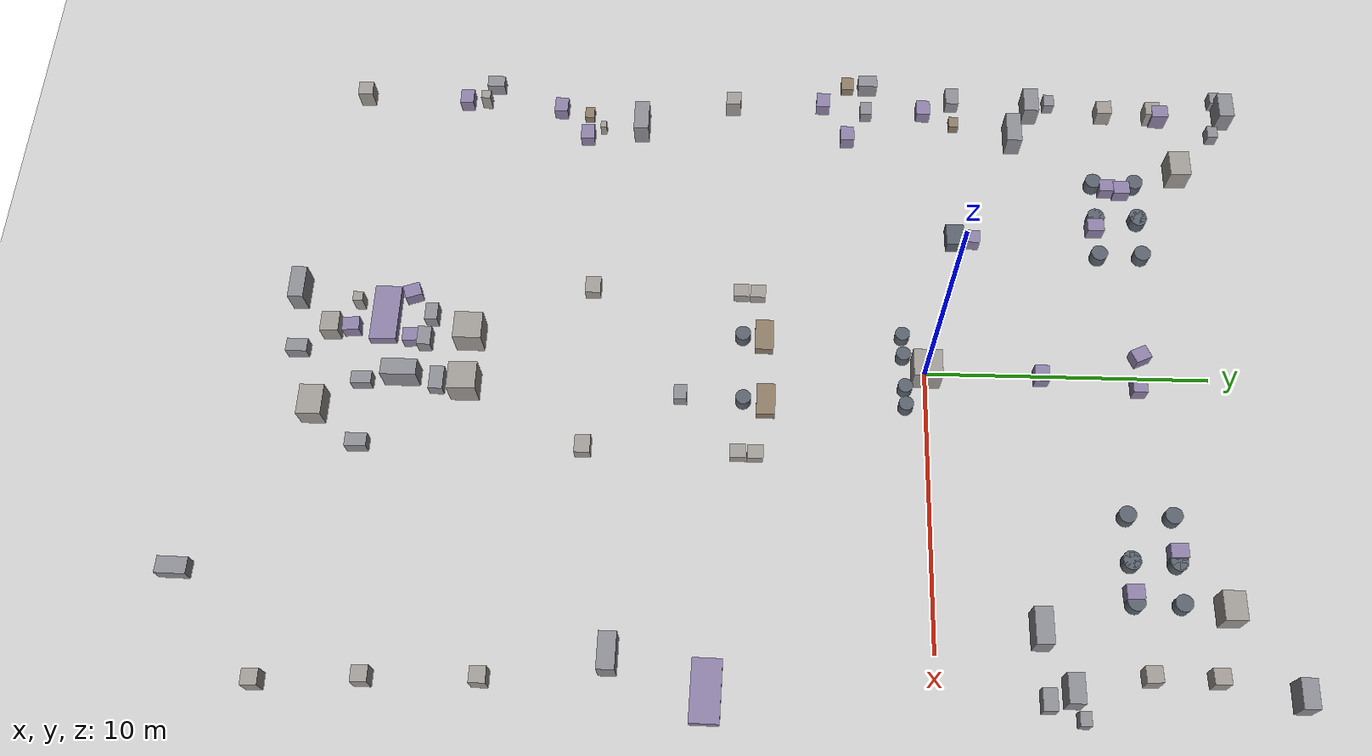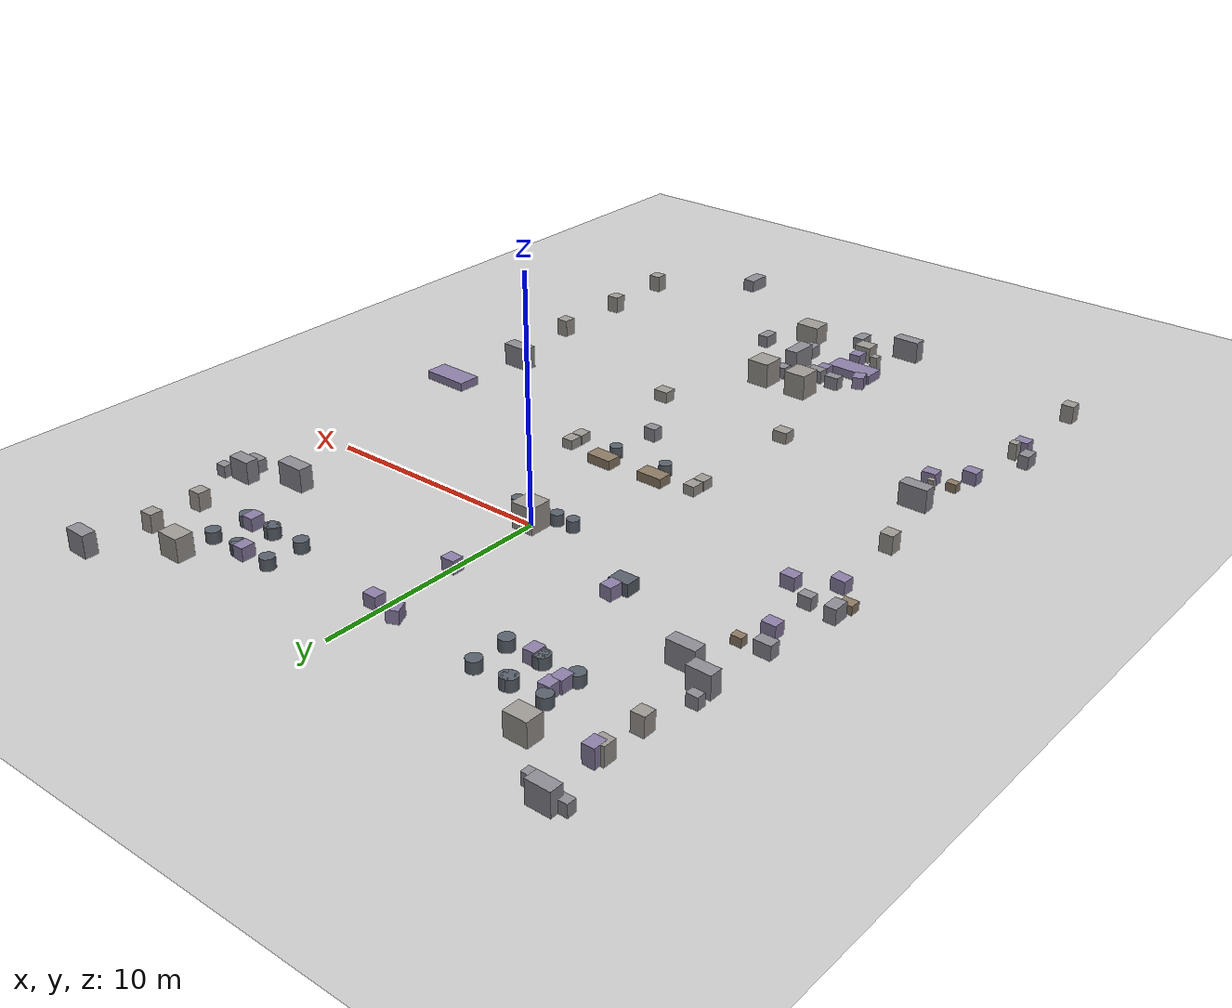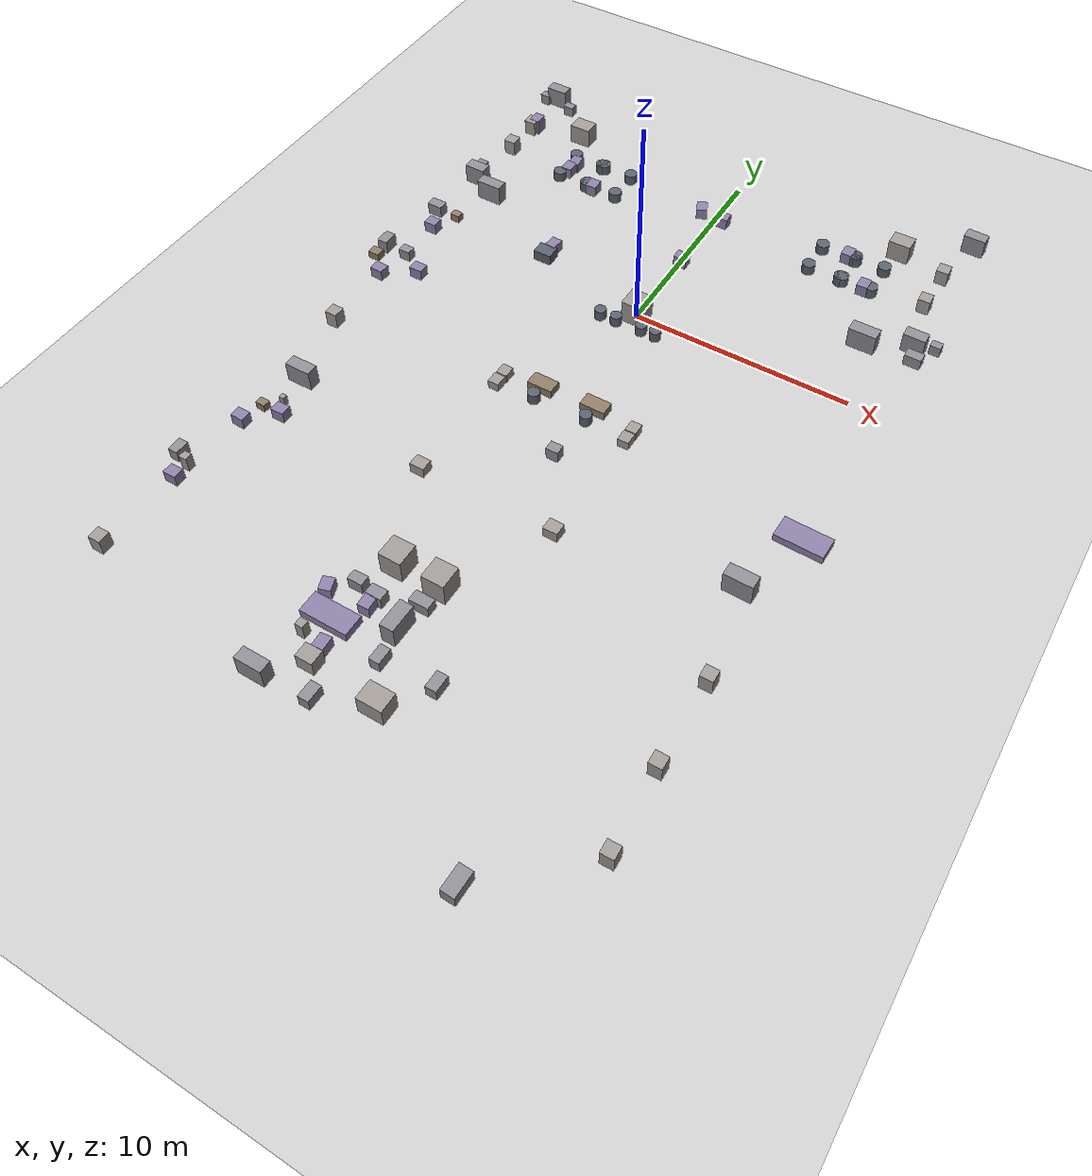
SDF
<sdf version="1.6">
 <world name="hospital">
  <plugin filename="gz-sim-physics-system" name="gz::sim::systems::Physics"/>
  <plugin filename="gz-sim-user-commands-system" name="gz::sim::systems::UserCommands"/>
  <plugin filename="gz-sim-scene-broadcaster-system" name="gz::sim::systems::SceneBroadcaster"/>
  <plugin filename="gz-sim-sensors-system" name="gz::sim::systems::Sensors">
   <render_engine>ogre2</render_engine>
  </plugin>
  <plugin filename="gz-sim-imu-system" name="gz::sim::systems::Imu"/>
  <gravity>0 0 -9.8</gravity>
  <physics default="0" name="default_physics" type="ode">
   <max_step_size>0.001</max_step_size>
   <real_time_factor>1</real_time_factor>
   <real_time_update_rate>1000</real_time_update_rate>
  </physics>
  <scene><ambient>0.6 0.6 0.6 1</ambient><background>0.4 0.4 0.4 1</background><shadows>false</shadows></scene>
  <include><uri>https://fuel.gazebosim.org/1.0/OpenRobotics/models/Ground Plane</uri></include>
  <include><uri>https://fuel.gazebosim.org/1.0/OpenRobotics/models/Sun</uri></include>
  <model name="CGMClassic_1">
   <include>
    <uri>https://fuel.gazebosim.org/1.0/OpenRobotics/models/CGMClassic</uri>
    <static>true</static>
    <pose>11.1777 -18.4129 0 0 0 -3.13719</pose>
   </include>
  </model>
  <model name="CGMClassic_2">
   <include>
    <uri>https://fuel.gazebosim.org/1.0/OpenRobotics/models/CGMClassic</uri>
    <static>true</static>
    <pose>11.1179 -14.6493 0 0 0 -3.13599</pose>
   </include>
  </model>
  <model name="Chair_1">
   <include>
    <uri>https://fuel.gazebosim.org/1.0/OpenRobotics/models/Chair</uri>
    <static>true</static>
    <pose>-0.603067 -0.77859 -1e-05 0 0 -1.54998</pose>
   </include>
  </model>
  <model name="Chair_2">
   <include>
    <uri>https://fuel.gazebosim.org/1.0/OpenRobotics/models/Chair</uri>
    <static>true</static>
    <pose>0.626494 -0.743667 -0 0 1e-06 -1.53446</pose>
   </include>
  </model>
  <model name="Scrubs_1">
   <include>
    <uri>https://fuel.gazebosim.org/1.0/OpenRobotics/models/Scrubs</uri>
    <static>true</static>
    <pose>-9.61916 -12.5112 0 0 0 -3.12353</pose>
   </include>
  </model>
  <model name="Scrubs_2">
   <include>
    <uri>https://fuel.gazebosim.org/1.0/OpenRobotics/models/Scrubs</uri>
    <static>true</static>
    <pose>0.054597 4.05849 0 0 -0 3.12413</pose>
   </include>
  </model>
  <model name="PatientWheelChair_1">
   <include>
    <uri>https://fuel.gazebosim.org/1.0/OpenRobotics/models/PatientWheelChair</uri>
    <static>true</static>
    <pose>-5.46091 1.23577 0 0 0 -1.54828</pose>
   </include>
  </model>
  <model name="Scrubs_3">
   <include>
    <uri>https://fuel.gazebosim.org/1.0/OpenRobotics/models/Scrubs</uri>
    <static>true</static>
    <pose>-5.38513 1.82526 0 0 0 -1.63757</pose>
   </include>
  </model>
  <model name="SurgicalTrolley_1">
   <include>
    <uri>https://fuel.gazebosim.org/1.0/OpenRobotics/models/SurgicalTrolley</uri>
    <static>true</static>
    <pose>11.4301 3.56328 0 0 -0 0</pose>
   </include>
  </model>
  <model name="CGMClassic_3">
   <include>
    <uri>https://fuel.gazebosim.org/1.0/OpenRobotics/models/CGMClassic</uri>
    <static>true</static>
    <pose>-11.2304 -21.1134 0 0 0 -3.11834</pose>
   </include>
  </model>
  <model name="PotatoChipChair_1">
   <include>
    <uri>https://fuel.gazebosim.org/1.0/OpenRobotics/models/PotatoChipChair</uri>
    <static>true</static>
    <pose>-7.9025 6.49258 0 0 -0 0</pose>
   </include>
  </model>
  <model name="PotatoChipChair_2">
   <include>
    <uri>https://fuel.gazebosim.org/1.0/OpenRobotics/models/PotatoChipChair</uri>
    <static>true</static>
    <pose>-7.89464 8.01997 0 0 -0 0</pose>
   </include>
  </model>
  <model name="PotatoChipChair_3">
   <include>
    <uri>https://fuel.gazebosim.org/1.0/OpenRobotics/models/PotatoChipChair</uri>
    <static>true</static>
    <pose>-6.39087 6.45458 0 0 0 -3.13096</pose>
   </include>
  </model>
  <model name="PotatoChipChair_4">
   <include>
    <uri>https://fuel.gazebosim.org/1.0/OpenRobotics/models/PotatoChipChair</uri>
    <static>true</static>
    <pose>-6.41405 8.00716 0 0 0 -3.13096</pose>
   </include>
  </model>
  <model name="PotatoChipChair_5">
   <include>
    <uri>https://fuel.gazebosim.org/1.0/OpenRobotics/models/PotatoChipChair</uri>
    <static>true</static>
    <pose>-6.32415 6.47504 0 0 -0 0</pose>
   </include>
  </model>
  <model name="PotatoChipChair_6">
   <include>
    <uri>https://fuel.gazebosim.org/1.0/OpenRobotics/models/PotatoChipChair</uri>
    <static>true</static>
    <pose>-6.32415 8.03277 0 0 -0 0</pose>
   </include>
  </model>
  <model name="PotatoChipChair_7">
   <include>
    <uri>https://fuel.gazebosim.org/1.0/OpenRobotics/models/PotatoChipChair</uri>
    <static>true</static>
    <pose>-4.83084 6.47504 0 0 0 -3.13096</pose>
   </include>
  </model>
  <model name="PotatoChipChair_8">
   <include>
    <uri>https://fuel.gazebosim.org/1.0/OpenRobotics/models/PotatoChipChair</uri>
    <static>true</static>
    <pose>-4.85665 8.03277 0 0 0 -3.13096</pose>
   </include>
  </model>
  <model name="VisitorKidSit_1">
   <include>
    <uri>https://fuel.gazebosim.org/1.0/OpenRobotics/models/VisitorKidSit</uri>
    <static>true</static>
    <pose>-7.69163 6.9857 0 0 -0 1.56778</pose>
   </include>
  </model>
  <model name="FemaleVisitorSit_1">
   <include>
    <uri>https://fuel.gazebosim.org/1.0/OpenRobotics/models/FemaleVisitorSit</uri>
    <static>true</static>
    <pose>-7.61435 7.50057 0 0 -0 1.60052</pose>
   </include>
  </model>
  <model name="AdjTable_1">
   <include>
    <uri>https://fuel.gazebosim.org/1.0/OpenRobotics/models/AdjTable</uri>
    <static>true</static>
    <pose>1.2174 -5.60888 0 0 0 -0.008733</pose>
   </include>
  </model>
  <model name="PotatoChipChair_9">
   <include>
    <uri>https://fuel.gazebosim.org/1.0/OpenRobotics/models/PotatoChipChair</uri>
    <static>true</static>
    <pose>8.18933 6.61196 0 0 -0 3.13621</pose>
   </include>
  </model>
  <model name="PotatoChipChair_10">
   <include>
    <uri>https://fuel.gazebosim.org/1.0/OpenRobotics/models/PotatoChipChair</uri>
    <static>true</static>
    <pose>8.18939 8.16786 0 0 -0 3.13621</pose>
   </include>
  </model>
  <model name="PotatoChipChair_11">
   <include>
    <uri>https://fuel.gazebosim.org/1.0/OpenRobotics/models/PotatoChipChair</uri>
    <static>true</static>
    <pose>6.80281 6.60106 0 0 -0 0</pose>
   </include>
  </model>
  <model name="PotatoChipChair_12">
   <include>
    <uri>https://fuel.gazebosim.org/1.0/OpenRobotics/models/PotatoChipChair</uri>
    <static>true</static>
    <pose>6.80281 8.1542 0 0 -0 0</pose>
   </include>
  </model>
  <model name="PotatoChipChair_13">
   <include>
    <uri>https://fuel.gazebosim.org/1.0/OpenRobotics/models/PotatoChipChair</uri>
    <static>true</static>
    <pose>6.73748 6.5915 0 0 -0 3.13621</pose>
   </include>
  </model>
  <model name="PotatoChipChair_14">
   <include>
    <uri>https://fuel.gazebosim.org/1.0/OpenRobotics/models/PotatoChipChair</uri>
    <static>true</static>
    <pose>6.7505 8.15453 0 0 -0 3.13621</pose>
   </include>
  </model>
  <model name="PotatoChipChair_15">
   <include>
    <uri>https://fuel.gazebosim.org/1.0/OpenRobotics/models/PotatoChipChair</uri>
    <static>true</static>
    <pose>5.17897 6.59309 0 0 -0 0</pose>
   </include>
  </model>
  <model name="PotatoChipChair_16">
   <include>
    <uri>https://fuel.gazebosim.org/1.0/OpenRobotics/models/PotatoChipChair</uri>
    <static>true</static>
    <pose>5.1811 8.14489 0 0 -0 0</pose>
   </include>
  </model>
  <model name="MopCart3_1">
   <include>
    <uri>https://fuel.gazebosim.org/1.0/OpenRobotics/models/MopCart3</uri>
    <static>true</static>
    <pose>1.07736 -8.59036 -6.7e-05 0 1e-06 0</pose>
   </include>
  </model>
  <model name="MaleVisitorSit_1">
   <include>
    <uri>https://fuel.gazebosim.org/1.0/OpenRobotics/models/MaleVisitorSit</uri>
    <static>true</static>
    <pose>6.41259 8.18749 0 0.000578 -0 -1.56624</pose>
   </include>
  </model>
  <model name="Drawer_1">
   <include>
    <uri>https://fuel.gazebosim.org/1.0/OpenRobotics/models/Drawer</uri>
    <static>true</static>
    <pose>3.18472 -6.54185 0 0 0 -1.55907</pose>
   </include>
  </model>
  <model name="Drawer_2">
   <include>
    <uri>https://fuel.gazebosim.org/1.0/OpenRobotics/models/Drawer</uri>
    <static>true</static>
    <pose>3.19085 -5.94838 0 0 0 -1.55907</pose>
   </include>
  </model>
  <model name="OfficeChairBlack_1">
   <include>
    <uri>https://fuel.gazebosim.org/1.0/OpenRobotics/models/OfficeChairBlack</uri>
    <static>true</static>
    <pose>1.20234 -6.39435 0 0 -0 3.13125</pose>
   </include>
  </model>
  <model name="OfficeChairBlack_2">
   <include>
    <uri>https://fuel.gazebosim.org/1.0/OpenRobotics/models/OfficeChairBlack</uri>
    <static>true</static>
    <pose>-1.25321 -6.4505 0 0 -0 3.13125</pose>
   </include>
  </model>
  <model name="AdjTable_2">
   <include>
    <uri>https://fuel.gazebosim.org/1.0/OpenRobotics/models/AdjTable</uri>
    <static>true</static>
    <pose>-1.26728 -5.69226 0 0 0 -0.008733</pose>
   </include>
  </model>
  <model name="Drawer_3">
   <include>
    <uri>https://fuel.gazebosim.org/1.0/OpenRobotics/models/Drawer</uri>
    <static>true</static>
    <pose>-3.02001 -6.54343 0 0 -0 1.56555</pose>
   </include>
  </model>
  <model name="Drawer_4">
   <include>
    <uri>https://fuel.gazebosim.org/1.0/OpenRobotics/models/Drawer</uri>
    <static>true</static>
    <pose>-2.99762 -5.94782 0 0 -0 1.56555</pose>
   </include>
  </model>
  <model name="ElderLadyPatient_1">
   <include>
    <uri>https://fuel.gazebosim.org/1.0/OpenRobotics/models/ElderLadyPatient</uri>
    <static>true</static>
    <pose>-10.9972 0.231354 0.001654 0 -0 0</pose>
   </include>
  </model>
  <model name="ElderLadyPatient_2">
   <include>
    <uri>https://fuel.gazebosim.org/1.0/OpenRobotics/models/ElderLadyPatient</uri>
    <static>true</static>
    <pose>-10.8133 -13.5925 0.001657 0 -2e-06 -0.025052</pose>
   </include>
  </model>
  <model name="CGMClassic_4">
   <include>
    <uri>https://fuel.gazebosim.org/1.0/OpenRobotics/models/CGMClassic</uri>
    <static>true</static>
    <pose>-11.0878 -7.00992 0 0 -0 3.1351</pose>
   </include>
  </model>
  <model name="InstrumentCart1_1">
   <include><uri>https://fuel.gazebosim.org/1.0/OpenRobotics/models/Shower</uri></include>
   <include>
    <uri>https://fuel.gazebosim.org/1.0/OpenRobotics/models/InstrumentCart1</uri>
    <static>true</static>
    <pose>-11.8071 -16.1825 0 0 -0 1.56702</pose>
   </include>
  </model>
  <model name="ElderMalePatient_1">
   <include>
    <uri>https://fuel.gazebosim.org/1.0/OpenRobotics/models/ElderMalePatient</uri>
    <static>true</static>
    <pose>-11.1165 -17.2377 0.001656 0 3e-06 0</pose>
   </include>
  </model>
  <model name="InstrumentCart2_1">
   <include>
    <uri>https://fuel.gazebosim.org/1.0/OpenRobotics/models/InstrumentCart2</uri>
    <static>true</static>
    <pose>-12.0906 -1.87329 0.051875 0 -0 1.57773</pose>
   </include>
  </model>
  <model name="InstrumentCart2_2">
   <include>
    <uri>https://fuel.gazebosim.org/1.0/OpenRobotics/models/InstrumentCart2</uri>
    <static>true</static>
    <pose>-11.5231 1.34237 0 0 -0 0</pose>
   </include>
  </model>
  <model name="MetalCabinet_1">
   <include>
    <uri>https://fuel.gazebosim.org/1.0/OpenRobotics/models/MetalCabinet</uri>
    <static>true</static>
    <pose>-11.1128 11.6546 0 0 -0 0</pose>
   </include>
  </model>
  <model name="MetalCabinet_2">
   <include>
    <uri>https://fuel.gazebosim.org/1.0/OpenRobotics/models/MetalCabinet</uri>
    <static>true</static>
    <pose>-11.1876 4.2888 0 0 -0 3.1387</pose>
   </include>
  </model>
  <model name="CGMClassic_5">
   <include>
    <uri>https://fuel.gazebosim.org/1.0/OpenRobotics/models/CGMClassic</uri>
    <static>true</static>
    <pose>-11.0106 8.9505 -0.008203 -0.035019 -0.000392 3.13388</pose>
   </include>
  </model>
  <model name="CGMClassic_6">
   <include>
    <uri>https://fuel.gazebosim.org/1.0/OpenRobotics/models/CGMClassic</uri>
    <static>true</static>
    <pose>-11.025 7.10335 0 -0.035021 1.8e-05 -3.13762</pose>
   </include>
  </model>
  <model name="BedTable_1">
   <include>
    <uri>https://fuel.gazebosim.org/1.0/OpenRobotics/models/BedTable</uri>
    <static>true</static>
    <pose>-10.4759 1.39442 0.001184 0 -3e-06 0</pose>
   </include>
  </model>
  <model name="BedTable_2">
   <include>
    <uri>https://fuel.gazebosim.org/1.0/OpenRobotics/models/BedTable</uri>
    <static>true</static>
    <pose>-10.5874 -12.5084 0.001189 0 -0 3.11588</pose>
   </include>
  </model>
  <model name="BedsideTable_1">
   <include>
    <uri>https://fuel.gazebosim.org/1.0/OpenRobotics/models/BedsideTable</uri>
    <static>true</static>
    <pose>-12.1499 -2.63111 0.00018 1e-06 -0 -0.00878</pose>
   </include>
  </model>
  <model name="AnesthesiaMachine_1">
   <include>
    <uri>https://fuel.gazebosim.org/1.0/OpenRobotics/models/AnesthesiaMachine</uri>
    <static>true</static>
    <pose>-1.28478 -21.1127 0 0 0 -3.12971</pose>
   </include>
  </model>
  <model name="TrolleyBedPatient_1">
   <include>
    <uri>https://fuel.gazebosim.org/1.0/OpenRobotics/models/TrolleyBedPatient</uri>
    <static>true</static>
    <pose>-1.83202 -19.2612 0 0 -0 0</pose>
   </include>
  </model>
  <model name="Scrubs_4">
   <include>
    <uri>https://fuel.gazebosim.org/1.0/OpenRobotics/models/Scrubs</uri>
    <static>true</static>
    <pose>-0.93616 -18.2252 0 0 -0 1.62572</pose>
   </include>
  </model>
  <model name="Shower_1">
   <include>
    <uri>https://fuel.gazebosim.org/1.0/OpenRobotics/models/Shower</uri>
    <static>true</static>
    <pose>-1.07422 -16.1332 0 0 -0 0</pose>
   </include>
  </model>
  <model name="Shower_2">
   <include>
    <uri>https://fuel.gazebosim.org/1.0/OpenRobotics/models/Shower</uri>
    <static>true</static>
    <pose>0.853327 -16.1492 0 0 -0 0</pose>
   </include>
  </model>
  <model name="SurgicalTrolley_2">
   <include>
    <uri>https://fuel.gazebosim.org/1.0/OpenRobotics/models/SurgicalTrolley</uri>
    <static>true</static>
    <pose>-0.411421 -22.2085 0 0 0 -1.58175</pose>
   </include>
  </model>
  <model name="SurgicalTrolley_3">
   <include>
    <uri>https://fuel.gazebosim.org/1.0/OpenRobotics/models/SurgicalTrolley</uri>
    <static>true</static>
    <pose>3.11747 -19.6565 0 0 -0 1.57031</pose>
   </include>
  </model>
  <model name="SurgicalTrolleyMed_1">
   <include>
    <uri>https://fuel.gazebosim.org/1.0/OpenRobotics/models/SurgicalTrolleyMed</uri>
    <static>true</static>
    <pose>0.770804 -19.7749 0 0 0 -1.56798</pose>
   </include>
  </model>
  <model name="Scrubs_5">
   <include>
    <uri>https://fuel.gazebosim.org/1.0/OpenRobotics/models/Scrubs</uri>
    <static>true</static>
    <pose>-2.66657 -18.3733 0 -0.002221 -0.006608 -1.24025</pose>
   </include>
  </model>
  <model name="InstrumentCart1_2">
   <include>
    <uri>https://fuel.gazebosim.org/1.0/OpenRobotics/models/InstrumentCart1</uri>
    <static>true</static>
    <pose>-11.8071 -16.1825 0 0 -0 1.56702</pose>
   </include>
  </model>
  <model name="InstrumentCart2_3">
   <include>
    <uri>https://fuel.gazebosim.org/1.0/OpenRobotics/models/InstrumentCart2</uri>
    <static>true</static>
    <pose>-0.869537 -17.7436 0 0 0 -0.002595</pose>
   </include>
  </model>
  <model name="StorageRackCovered_1">
   <include>
    <uri>https://fuel.gazebosim.org/1.0/OpenRobotics/models/StorageRackCovered</uri>
    <static>true</static>
    <pose>0.546476 -18.3985 -0 0 -0 1.56584</pose>
   </include>
  </model>
  <model name="StorageRack_2">
   <include>
    <uri>https://fuel.gazebosim.org/1.0/OpenRobotics/models/StorageRack</uri>
    <static>true</static>
    <pose>-2.69866 -22.4178 -8e-06 0 4e-06 0</pose>
   </include>
  </model>
  <model name="KitchenSink_1">
   <include>
    <uri>https://fuel.gazebosim.org/1.0/OpenRobotics/models/KitchenSink</uri>
    <static>true</static>
    <pose>3.06236 -11.8809 -0.001614 0 -0 3.1391</pose>
   </include>
  </model>
  <model name="KitchenSink_2">
   <include>
    <uri>https://fuel.gazebosim.org/1.0/OpenRobotics/models/KitchenSink</uri>
    <static>true</static>
    <pose>-3.09305 -11.8988 -0.001609 0 -0 0</pose>
   </include>
  </model>
  <model name="CGMClassic_7">
   <include>
    <uri>https://fuel.gazebosim.org/1.0/OpenRobotics/models/CGMClassic</uri>
    <static>true</static>
    <pose>10.6166 9.06291 -0.008203 -0.03501 0.000885 -3.11285</pose>
   </include>
  </model>
  <model name="CGMClassic_8">
   <include>
    <uri>https://fuel.gazebosim.org/1.0/OpenRobotics/models/CGMClassic</uri>
    <static>true</static>
    <pose>10.6006 6.90956 -0.008203 -0.035003 0.001133 -3.10576</pose>
   </include>
  </model>
  <model name="MetalCabinet_3">
   <include>
    <uri>https://fuel.gazebosim.org/1.0/OpenRobotics/models/MetalCabinet</uri>
    <static>true</static>
    <pose>11.1356 4.33826 0 0 -0 3.1387</pose>
   </include>
  </model>
  <model name="MetalCabinet_4">
   <include>
    <uri>https://fuel.gazebosim.org/1.0/OpenRobotics/models/MetalCabinet</uri>
    <static>true</static>
    <pose>11.1318 11.6838 0 0 0 -0.023701</pose>
   </include>
  </model>
  <model name="ParkingTrolleyMin_1">
   <include>
    <uri>https://fuel.gazebosim.org/1.0/OpenRobotics/models/ParkingTrolleyMin</uri>
    <static>true</static>
    <pose>0.715846 -17.1496 -0.000121 -1e-06 -0 0</pose>
   </include>
  </model>
  <model name="PatientFSit_1">
   <include>
    <uri>https://fuel.gazebosim.org/1.0/OpenRobotics/models/PatientFSit</uri>
    <static>true</static>
    <pose>-10.8902 9.18683 0.228965 0 -0 1.58161</pose>
   </include>
  </model>
  <model name="MaleVisitorOnPhone_1">
   <include>
    <uri>https://fuel.gazebosim.org/1.0/OpenRobotics/models/MaleVisitorOnPhone</uri>
    <static>true</static>
    <pose>-0.760316 7.58474 0 0 0 -1.14974</pose>
   </include>
  </model>
  <model name="FemaleVisitor_1">
   <include>
    <uri>https://fuel.gazebosim.org/1.0/OpenRobotics/models/FemaleVisitor</uri>
    <static>true</static>
    <pose>0.416835 7.44353 0 0 -0 0</pose>
   </include>
  </model>
  <model name="MaleVisitorSit_2">
   <include>
    <uri>https://fuel.gazebosim.org/1.0/OpenRobotics/models/MaleVisitorSit</uri>
    <static>true</static>
    <pose>-5.98588 6.41261 0 0 -0 1.58808</pose>
   </include>
  </model>
  <model name="Scrubs_6">
   <include>
    <uri>https://fuel.gazebosim.org/1.0/OpenRobotics/models/Scrubs</uri>
    <static>true</static>
    <pose>-1.29468 -20.4093 0 0 0 -1.51066</pose>
   </include>
  </model>
  <model name="MalePatientBed_1">
   <include>
    <uri>https://fuel.gazebosim.org/1.0/OpenRobotics/models/MalePatientBed</uri>
    <static>true</static>
    <pose>11.3771 -7.38891 0.001658 -1e-06 1e-06 3.11598</pose>
   </include>
  </model>
  <model name="CGMClassic_9">
   <include>
    <uri>https://fuel.gazebosim.org/1.0/OpenRobotics/models/CGMClassic</uri>
    <static>true</static>
    <pose>11.3613 -21.8867 0 0 0 -3.12292</pose>
   </include>
  </model>
  <model name="StorageRackCoverOpen_1">
   <include>
    <uri>https://fuel.gazebosim.org/1.0/OpenRobotics/models/StorageRackCoverOpen</uri>
    <static>true</static>
    <pose>9.15016 3.44263 -9e-06 1e-06 2e-06 0</pose>
   </include>
  </model>
  <model name="StorageRack_3">
   <include>
    <uri>https://fuel.gazebosim.org/1.0/OpenRobotics/models/StorageRack</uri>
    <static>true</static>
    <pose>-10.1178 -10.4694 -0 0 -0 0</pose>
   </include>
  </model>
  <model name="StorageRack_4">
   <include>
    <uri>https://fuel.gazebosim.org/1.0/OpenRobotics/models/StorageRack</uri>
    <static>true</static>
    <pose>-9.91557 3.5644 -9e-06 1e-06 1e-06 -0.000273</pose>
   </include>
  </model>
  <model name="StorageRackCovered_2">
   <include>
    <uri>https://fuel.gazebosim.org/1.0/OpenRobotics/models/StorageRackCovered</uri>
    <static>true</static>
    <pose>10.294 -10.577 -7e-06 3e-06 -0 3.13389</pose>
   </include>
  </model>
  <model name="FemaleVisitorSit_2">
   <include>
    <uri>https://fuel.gazebosim.org/1.0/OpenRobotics/models/FemaleVisitorSit</uri>
    <static>true</static>
    <pose>7.85005 6.59766 0 0 0 -1.5621</pose>
   </include>
  </model>
  <model name="InstrumentCart1_3">
   <include>
    <uri>https://fuel.gazebosim.org/1.0/OpenRobotics/models/InstrumentCart1</uri>
    <static>true</static>
    <pose>-1.83539 -17.5879 0 0 -0 0</pose>
   </include>
  </model>
  <model name="ParkingTrolleyMax_1">
   <include>
    <uri>https://fuel.gazebosim.org/1.0/OpenRobotics/models/ParkingTrolleyMax</uri>
    <static>true</static>
    <pose>7.71054 -25.1326 -0.000121 1e-06 -0 -1.59536</pose>
   </include>
  </model>
  <model name="ElderMalePatient_2">
   <include>
    <uri>https://fuel.gazebosim.org/1.0/OpenRobotics/models/ElderMalePatient</uri>
    <static>true</static>
    <pose>-11.2471 -3.5813 0.001656 0 -0 -0.054192</pose>
   </include>
  </model>
  <model name="Chair_3">
   <include>
    <uri>https://fuel.gazebosim.org/1.0/OpenRobotics/models/Chair</uri>
    <static>true</static>
    <pose>-1.37633 -0.795802 0 -1e-06 0 -1.54998</pose>
   </include>
  </model>
  <model name="XRayMachine_1">
   <include>
    <uri>https://fuel.gazebosim.org/1.0/OpenRobotics/models/XRayMachine</uri>
    <static>true</static>
    <pose>1.79424 -21.3329 0 0 -0 0</pose>
   </include>
  </model>
  <model name="IVStand_1">
   <include>
    <uri>https://fuel.gazebosim.org/1.0/OpenRobotics/models/IVStand</uri>
    <static>true</static>
    <pose>-11.0966 -16.4963 0 0 -0 0</pose>
   </include>
  </model>
  <model name="BloodPressureMonitor_1">
   <include>
    <uri>https://fuel.gazebosim.org/1.0/OpenRobotics/models/BloodPressureMonitor</uri>
    <static>true</static>
    <pose>-9.96258 -11.9361 0 0 -0 0</pose>
   </include>
  </model>
  <model name="IVStand_2">
   <include>
    <uri>https://fuel.gazebosim.org/1.0/OpenRobotics/models/IVStand</uri>
    <static>true</static>
    <pose>-2.30593 -20.2447 0 0 -0 0</pose>
   </include>
  </model>
  <model name="BMWCart_1">
   <include>
    <uri>https://fuel.gazebosim.org/1.0/OpenRobotics/models/BMWCart</uri>
    <static>true</static>
    <pose>-10.931 -1.9483 0 0 -0 0</pose>
   </include>
  </model>
  <model name="Scrubs_7">
   <include>
    <uri>https://fuel.gazebosim.org/1.0/OpenRobotics/models/Scrubs</uri>
    <static>true</static>
    <pose>-9.75875 -2.67552 0 0 -0 0</pose>
   </include>
  </model>
  <model name="BPCart_1">
   <include>
    <uri>https://fuel.gazebosim.org/1.0/OpenRobotics/models/BPCart</uri>
    <static>true</static>
    <pose>-10.1788 11.173 0.003446 1e-06 -0 0.003096</pose>
   </include>
  </model>
  <model name="BPCart_2">
   <include>
    <uri>https://fuel.gazebosim.org/1.0/OpenRobotics/models/BPCart</uri>
    <static>true</static>
    <pose>12.0072 4.64765 0 0 -0 0</pose>
   </include>
  </model>
  <model name="BPCart_3">
   <include>
    <uri>https://fuel.gazebosim.org/1.0/OpenRobotics/models/BPCart</uri>
    <static>true</static>
    <pose>-11.7236 11.4294 0 0 -0 0</pose>
   </include>
  </model>
  <model name="BPCart_4">
   <include>
    <uri>https://fuel.gazebosim.org/1.0/OpenRobotics/models/BPCart</uri>
    <static>true</static>
    <pose>-11.4703 5.05999 0.003446 1e-06 -0 0.003096</pose>
   </include>
  </model>
  <model name="VendingMachine_1">
   <include>
    <uri>https://fuel.gazebosim.org/1.0/OpenRobotics/models/VendingMachine</uri>
    <static>true</static>
    <pose>-8.45694 9.63064 0 0 -0 0</pose>
   </include>
  </model>
  <model name="VendingMachine_2">
   <include>
    <uri>https://fuel.gazebosim.org/1.0/OpenRobotics/models/VendingMachine</uri>
    <static>true</static>
    <pose>8.35378 9.64852 -3e-06 -6e-06 0 0</pose>
   </include>
  </model>
  <model name="Chair_4">
   <include>
    <uri>https://fuel.gazebosim.org/1.0/OpenRobotics/models/Chair</uri>
    <static>true</static>
    <pose>1.30985 -0.727185 -0 0 0 -1.53446</pose>
   </include>
  </model>
 </world>
</sdf>

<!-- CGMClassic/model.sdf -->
<sdf version="1.6">
  <model name="CGMClassic">
    <static>true</static>
    <link name="link">
      <collision name="col">
        <geometry>
          <box>
            <size>0.55 0.55 1.45</size>
          </box>
        </geometry>
      </collision>
      <visual name="vis">
        <geometry>
          <box>
            <size>0.55 0.55 1.45</size>
          </box>
        </geometry>
        <material>
          <ambient>0.62 0.6 0.58 1</ambient>
          <diffuse>0.62 0.6 0.58 1</diffuse>
        </material>
      </visual>
    </link>
  </model>
</sdf>

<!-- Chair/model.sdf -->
<sdf version="1.6">
  <model name="Chair">
    <static>true</static>
    <link name="link">
      <collision name="col">
        <geometry>
          <cylinder>
            <radius>0.26</radius>
            <length>0.9</length>
          </cylinder>
        </geometry>
      </collision>
      <visual name="vis">
        <geometry>
          <cylinder>
            <radius>0.26</radius>
            <length>0.9</length>
          </cylinder>
        </geometry>
        <material>
          <ambient>0.35 0.38 0.42 1</ambient>
          <diffuse>0.35 0.38 0.42 1</diffuse>
        </material>
      </visual>
    </link>
  </model>
</sdf>

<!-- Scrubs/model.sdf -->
<sdf version="1.6">
  <model name="Scrubs">
    <static>true</static>
    <link name="link">
      <collision name="col">
        <geometry>
          <box>
            <size>0.6 0.5 1.0</size>
          </box>
        </geometry>
      </collision>
      <visual name="vis">
        <geometry>
          <box>
            <size>0.6 0.5 1.0</size>
          </box>
        </geometry>
        <material>
          <ambient>0.55 0.5 0.65 1</ambient>
          <diffuse>0.55 0.5 0.65 1</diffuse>
        </material>
      </visual>
    </link>
  </model>
</sdf>

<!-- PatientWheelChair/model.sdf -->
<sdf version="1.6">
  <model name="PatientWheelChair">
    <static>true</static>
    <link name="link">
      <collision name="col">
        <geometry>
          <box>
            <size>0.65 0.85 0.95</size>
          </box>
        </geometry>
      </collision>
      <visual name="vis">
        <geometry>
          <box>
            <size>0.65 0.85 0.95</size>
          </box>
        </geometry>
        <material>
          <ambient>0.35 0.38 0.42 1</ambient>
          <diffuse>0.35 0.38 0.42 1</diffuse>
        </material>
      </visual>
    </link>
  </model>
</sdf>

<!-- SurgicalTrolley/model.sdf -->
<sdf version="1.6">
  <model name="SurgicalTrolley">
    <static>true</static>
    <link name="link">
      <collision name="col">
        <geometry>
          <box>
            <size>0.75 0.48 1.0</size>
          </box>
        </geometry>
      </collision>
      <visual name="vis">
        <geometry>
          <box>
            <size>0.75 0.48 1.0</size>
          </box>
        </geometry>
        <material>
          <ambient>0.55 0.55 0.58 1</ambient>
          <diffuse>0.55 0.55 0.58 1</diffuse>
        </material>
      </visual>
    </link>
  </model>
</sdf>

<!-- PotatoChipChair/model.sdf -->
<sdf version="1.6">
  <model name="PotatoChipChair">
    <static>true</static>
    <link name="link">
      <collision name="col">
        <geometry>
          <cylinder>
            <radius>0.3</radius>
            <length>0.88</length>
          </cylinder>
        </geometry>
      </collision>
      <visual name="vis">
        <geometry>
          <cylinder>
            <radius>0.3</radius>
            <length>0.88</length>
          </cylinder>
        </geometry>
        <material>
          <ambient>0.35 0.38 0.42 1</ambient>
          <diffuse>0.35 0.38 0.42 1</diffuse>
        </material>
      </visual>
    </link>
  </model>
</sdf>

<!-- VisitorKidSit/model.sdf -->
<sdf version="1.6">
  <model name="VisitorKidSit">
    <static>true</static>
    <link name="link">
      <collision name="col">
        <geometry>
          <box>
            <size>0.6 0.5 1.0</size>
          </box>
        </geometry>
      </collision>
      <visual name="vis">
        <geometry>
          <box>
            <size>0.6 0.5 1.0</size>
          </box>
        </geometry>
        <material>
          <ambient>0.55 0.5 0.65 1</ambient>
          <diffuse>0.55 0.5 0.65 1</diffuse>
        </material>
      </visual>
    </link>
  </model>
</sdf>

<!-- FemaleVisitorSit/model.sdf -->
<sdf version="1.6">
  <model name="FemaleVisitorSit">
    <static>true</static>
    <link name="link">
      <collision name="col">
        <geometry>
          <box>
            <size>0.6 0.5 1.0</size>
          </box>
        </geometry>
      </collision>
      <visual name="vis">
        <geometry>
          <box>
            <size>0.6 0.5 1.0</size>
          </box>
        </geometry>
        <material>
          <ambient>0.55 0.5 0.65 1</ambient>
          <diffuse>0.55 0.5 0.65 1</diffuse>
        </material>
      </visual>
    </link>
  </model>
</sdf>

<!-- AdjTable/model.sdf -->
<sdf version="1.6">
  <model name="AdjTable">
    <static>true</static>
    <link name="link">
      <collision name="col">
        <geometry>
          <box>
            <size>1.15 0.65 0.72</size>
          </box>
        </geometry>
      </collision>
      <visual name="vis">
        <geometry>
          <box>
            <size>1.15 0.65 0.72</size>
          </box>
        </geometry>
        <material>
          <ambient>0.55 0.48 0.4 1</ambient>
          <diffuse>0.55 0.48 0.4 1</diffuse>
        </material>
      </visual>
    </link>
  </model>
</sdf>

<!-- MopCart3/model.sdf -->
<sdf version="1.6">
  <model name="MopCart3">
    <static>true</static>
    <link name="link">
      <collision name="col">
        <geometry>
          <box>
            <size>0.55 0.45 1.05</size>
          </box>
        </geometry>
      </collision>
      <visual name="vis">
        <geometry>
          <box>
            <size>0.55 0.45 1.05</size>
          </box>
        </geometry>
        <material>
          <ambient>0.55 0.55 0.58 1</ambient>
          <diffuse>0.55 0.55 0.58 1</diffuse>
        </material>
      </visual>
    </link>
  </model>
</sdf>

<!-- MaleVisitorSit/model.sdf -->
<sdf version="1.6">
  <model name="MaleVisitorSit">
    <static>true</static>
    <link name="link">
      <collision name="col">
        <geometry>
          <box>
            <size>0.6 0.5 1.0</size>
          </box>
        </geometry>
      </collision>
      <visual name="vis">
        <geometry>
          <box>
            <size>0.6 0.5 1.0</size>
          </box>
        </geometry>
        <material>
          <ambient>0.55 0.5 0.65 1</ambient>
          <diffuse>0.55 0.5 0.65 1</diffuse>
        </material>
      </visual>
    </link>
  </model>
</sdf>

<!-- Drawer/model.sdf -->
<sdf version="1.6">
  <model name="Drawer">
    <static>true</static>
    <link name="link">
      <collision name="col">
        <geometry>
          <box>
            <size>0.55 0.5 0.75</size>
          </box>
        </geometry>
      </collision>
      <visual name="vis">
        <geometry>
          <box>
            <size>0.55 0.5 0.75</size>
          </box>
        </geometry>
        <material>
          <ambient>0.62 0.6 0.58 1</ambient>
          <diffuse>0.62 0.6 0.58 1</diffuse>
        </material>
      </visual>
    </link>
  </model>
</sdf>

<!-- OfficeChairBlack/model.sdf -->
<sdf version="1.6">
  <model name="OfficeChairBlack">
    <static>true</static>
    <link name="link">
      <collision name="col">
        <geometry>
          <cylinder>
            <radius>0.27</radius>
            <length>0.93</length>
          </cylinder>
        </geometry>
      </collision>
      <visual name="vis">
        <geometry>
          <cylinder>
            <radius>0.27</radius>
            <length>0.93</length>
          </cylinder>
        </geometry>
        <material>
          <ambient>0.35 0.38 0.42 1</ambient>
          <diffuse>0.35 0.38 0.42 1</diffuse>
        </material>
      </visual>
    </link>
  </model>
</sdf>

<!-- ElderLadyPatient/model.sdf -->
<sdf version="1.6">
  <model name="ElderLadyPatient">
    <static>true</static>
    <link name="link">
      <collision name="col">
        <geometry>
          <box>
            <size>0.6 0.5 1.0</size>
          </box>
        </geometry>
      </collision>
      <visual name="vis">
        <geometry>
          <box>
            <size>0.6 0.5 1.0</size>
          </box>
        </geometry>
        <material>
          <ambient>0.55 0.5 0.65 1</ambient>
          <diffuse>0.55 0.5 0.65 1</diffuse>
        </material>
      </visual>
    </link>
  </model>
</sdf>

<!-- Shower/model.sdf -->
<sdf version="1.6">
  <model name="Shower">
    <static>true</static>
    <link name="link">
      <collision name="col">
        <geometry>
          <box>
            <size>1.0 1.0 2.1</size>
          </box>
        </geometry>
      </collision>
      <visual name="vis">
        <geometry>
          <box>
            <size>1.0 1.0 2.1</size>
          </box>
        </geometry>
        <material>
          <ambient>0.62 0.6 0.58 1</ambient>
          <diffuse>0.62 0.6 0.58 1</diffuse>
        </material>
      </visual>
    </link>
  </model>
</sdf>

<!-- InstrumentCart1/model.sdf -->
<sdf version="1.6">
  <model name="InstrumentCart1">
    <static>true</static>
    <link name="link">
      <collision name="col">
        <geometry>
          <box>
            <size>0.65 0.45 1.05</size>
          </box>
        </geometry>
      </collision>
      <visual name="vis">
        <geometry>
          <box>
            <size>0.65 0.45 1.05</size>
          </box>
        </geometry>
        <material>
          <ambient>0.55 0.55 0.58 1</ambient>
          <diffuse>0.55 0.55 0.58 1</diffuse>
        </material>
      </visual>
    </link>
  </model>
</sdf>

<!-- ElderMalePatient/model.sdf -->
<sdf version="1.6">
  <model name="ElderMalePatient">
    <static>true</static>
    <link name="link">
      <collision name="col">
        <geometry>
          <box>
            <size>0.6 0.5 1.0</size>
          </box>
        </geometry>
      </collision>
      <visual name="vis">
        <geometry>
          <box>
            <size>0.6 0.5 1.0</size>
          </box>
        </geometry>
        <material>
          <ambient>0.55 0.5 0.65 1</ambient>
          <diffuse>0.55 0.5 0.65 1</diffuse>
        </material>
      </visual>
    </link>
  </model>
</sdf>

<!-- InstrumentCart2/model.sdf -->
<sdf version="1.6">
  <model name="InstrumentCart2">
    <static>true</static>
    <link name="link">
      <collision name="col">
        <geometry>
          <box>
            <size>0.7 0.48 1.08</size>
          </box>
        </geometry>
      </collision>
      <visual name="vis">
        <geometry>
          <box>
            <size>0.7 0.48 1.08</size>
          </box>
        </geometry>
        <material>
          <ambient>0.55 0.55 0.58 1</ambient>
          <diffuse>0.55 0.55 0.58 1</diffuse>
        </material>
      </visual>
    </link>
  </model>
</sdf>

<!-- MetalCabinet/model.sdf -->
<sdf version="1.6">
  <model name="MetalCabinet">
    <static>true</static>
    <link name="link">
      <collision name="col">
        <geometry>
          <box>
            <size>1.0 0.55 1.8</size>
          </box>
        </geometry>
      </collision>
      <visual name="vis">
        <geometry>
          <box>
            <size>1.0 0.55 1.8</size>
          </box>
        </geometry>
        <material>
          <ambient>0.55 0.55 0.58 1</ambient>
          <diffuse>0.55 0.55 0.58 1</diffuse>
        </material>
      </visual>
    </link>
  </model>
</sdf>

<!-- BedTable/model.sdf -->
<sdf version="1.6">
  <model name="BedTable">
    <static>true</static>
    <link name="link">
      <collision name="col">
        <geometry>
          <box>
            <size>0.45 0.35 0.65</size>
          </box>
        </geometry>
      </collision>
      <visual name="vis">
        <geometry>
          <box>
            <size>0.45 0.35 0.65</size>
          </box>
        </geometry>
        <material>
          <ambient>0.55 0.48 0.4 1</ambient>
          <diffuse>0.55 0.48 0.4 1</diffuse>
        </material>
      </visual>
    </link>
  </model>
</sdf>

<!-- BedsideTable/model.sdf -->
<sdf version="1.6">
  <model name="BedsideTable">
    <static>true</static>
    <link name="link">
      <collision name="col">
        <geometry>
          <box>
            <size>0.55 0.45 0.65</size>
          </box>
        </geometry>
      </collision>
      <visual name="vis">
        <geometry>
          <box>
            <size>0.55 0.45 0.65</size>
          </box>
        </geometry>
        <material>
          <ambient>0.55 0.48 0.4 1</ambient>
          <diffuse>0.55 0.48 0.4 1</diffuse>
        </material>
      </visual>
    </link>
  </model>
</sdf>

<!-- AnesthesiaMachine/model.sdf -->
<sdf version="1.6">
  <model name="AnesthesiaMachine">
    <static>true</static>
    <link name="link">
      <collision name="col">
        <geometry>
          <box>
            <size>0.75 0.65 1.35</size>
          </box>
        </geometry>
      </collision>
      <visual name="vis">
        <geometry>
          <box>
            <size>0.75 0.65 1.35</size>
          </box>
        </geometry>
        <material>
          <ambient>0.62 0.6 0.58 1</ambient>
          <diffuse>0.62 0.6 0.58 1</diffuse>
        </material>
      </visual>
    </link>
  </model>
</sdf>

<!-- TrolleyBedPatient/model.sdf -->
<sdf version="1.6">
  <model name="TrolleyBedPatient">
    <static>true</static>
    <link name="link">
      <collision name="col">
        <geometry>
          <box>
            <size>2.1 0.95 0.72</size>
          </box>
        </geometry>
      </collision>
      <visual name="vis">
        <geometry>
          <box>
            <size>2.1 0.95 0.72</size>
          </box>
        </geometry>
        <material>
          <ambient>0.55 0.5 0.65 1</ambient>
          <diffuse>0.55 0.5 0.65 1</diffuse>
        </material>
      </visual>
    </link>
  </model>
</sdf>

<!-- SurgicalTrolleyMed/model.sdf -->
<sdf version="1.6">
  <model name="SurgicalTrolleyMed">
    <static>true</static>
    <link name="link">
      <collision name="col">
        <geometry>
          <box>
            <size>0.72 0.46 0.98</size>
          </box>
        </geometry>
      </collision>
      <visual name="vis">
        <geometry>
          <box>
            <size>0.72 0.46 0.98</size>
          </box>
        </geometry>
        <material>
          <ambient>0.55 0.55 0.58 1</ambient>
          <diffuse>0.55 0.55 0.58 1</diffuse>
        </material>
      </visual>
    </link>
  </model>
</sdf>

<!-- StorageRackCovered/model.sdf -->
<sdf version="1.6">
  <model name="StorageRackCovered">
    <static>true</static>
    <link name="link">
      <collision name="col">
        <geometry>
          <box>
            <size>1.25 0.6 1.9</size>
          </box>
        </geometry>
      </collision>
      <visual name="vis">
        <geometry>
          <box>
            <size>1.25 0.6 1.9</size>
          </box>
        </geometry>
        <material>
          <ambient>0.55 0.55 0.58 1</ambient>
          <diffuse>0.55 0.55 0.58 1</diffuse>
        </material>
      </visual>
    </link>
  </model>
</sdf>

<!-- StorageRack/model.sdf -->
<sdf version="1.6">
  <model name="StorageRack">
    <static>true</static>
    <link name="link">
      <collision name="col">
        <geometry>
          <box>
            <size>1.2 0.55 1.85</size>
          </box>
        </geometry>
      </collision>
      <visual name="vis">
        <geometry>
          <box>
            <size>1.2 0.55 1.85</size>
          </box>
        </geometry>
        <material>
          <ambient>0.55 0.55 0.58 1</ambient>
          <diffuse>0.55 0.55 0.58 1</diffuse>
        </material>
      </visual>
    </link>
  </model>
</sdf>

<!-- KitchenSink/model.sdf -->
<sdf version="1.6">
  <model name="KitchenSink">
    <static>true</static>
    <link name="link">
      <collision name="col">
        <geometry>
          <box>
            <size>0.65 0.55 0.9</size>
          </box>
        </geometry>
      </collision>
      <visual name="vis">
        <geometry>
          <box>
            <size>0.65 0.55 0.9</size>
          </box>
        </geometry>
        <material>
          <ambient>0.62 0.6 0.58 1</ambient>
          <diffuse>0.62 0.6 0.58 1</diffuse>
        </material>
      </visual>
    </link>
  </model>
</sdf>

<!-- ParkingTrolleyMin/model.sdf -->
<sdf version="1.6">
  <model name="ParkingTrolleyMin">
    <static>true</static>
    <link name="link">
      <collision name="col">
        <geometry>
          <box>
            <size>0.85 0.5 0.95</size>
          </box>
        </geometry>
      </collision>
      <visual name="vis">
        <geometry>
          <box>
            <size>0.85 0.5 0.95</size>
          </box>
        </geometry>
        <material>
          <ambient>0.55 0.55 0.58 1</ambient>
          <diffuse>0.55 0.55 0.58 1</diffuse>
        </material>
      </visual>
    </link>
  </model>
</sdf>

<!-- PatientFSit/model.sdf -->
<sdf version="1.6">
  <model name="PatientFSit">
    <static>true</static>
    <link name="link">
      <collision name="col">
        <geometry>
          <box>
            <size>0.6 0.5 1.0</size>
          </box>
        </geometry>
      </collision>
      <visual name="vis">
        <geometry>
          <box>
            <size>0.6 0.5 1.0</size>
          </box>
        </geometry>
        <material>
          <ambient>0.55 0.5 0.65 1</ambient>
          <diffuse>0.55 0.5 0.65 1</diffuse>
        </material>
      </visual>
    </link>
  </model>
</sdf>

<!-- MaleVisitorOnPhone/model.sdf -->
<sdf version="1.6">
  <model name="MaleVisitorOnPhone">
    <static>true</static>
    <link name="link">
      <collision name="col">
        <geometry>
          <box>
            <size>0.6 0.5 1.0</size>
          </box>
        </geometry>
      </collision>
      <visual name="vis">
        <geometry>
          <box>
            <size>0.6 0.5 1.0</size>
          </box>
        </geometry>
        <material>
          <ambient>0.55 0.5 0.65 1</ambient>
          <diffuse>0.55 0.5 0.65 1</diffuse>
        </material>
      </visual>
    </link>
  </model>
</sdf>

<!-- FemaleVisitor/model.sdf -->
<sdf version="1.6">
  <model name="FemaleVisitor">
    <static>true</static>
    <link name="link">
      <collision name="col">
        <geometry>
          <box>
            <size>0.6 0.5 1.0</size>
          </box>
        </geometry>
      </collision>
      <visual name="vis">
        <geometry>
          <box>
            <size>0.6 0.5 1.0</size>
          </box>
        </geometry>
        <material>
          <ambient>0.55 0.5 0.65 1</ambient>
          <diffuse>0.55 0.5 0.65 1</diffuse>
        </material>
      </visual>
    </link>
  </model>
</sdf>

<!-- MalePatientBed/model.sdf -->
<sdf version="1.6">
  <model name="MalePatientBed">
    <static>true</static>
    <link name="link">
      <collision name="col">
        <geometry>
          <box>
            <size>2.1 1.0 0.65</size>
          </box>
        </geometry>
      </collision>
      <visual name="vis">
        <geometry>
          <box>
            <size>2.1 1.0 0.65</size>
          </box>
        </geometry>
        <material>
          <ambient>0.55 0.5 0.65 1</ambient>
          <diffuse>0.55 0.5 0.65 1</diffuse>
        </material>
      </visual>
    </link>
  </model>
</sdf>

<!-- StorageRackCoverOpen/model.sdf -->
<sdf version="1.6">
  <model name="StorageRackCoverOpen">
    <static>true</static>
    <link name="link">
      <collision name="col">
        <geometry>
          <box>
            <size>1.25 0.6 1.9</size>
          </box>
        </geometry>
      </collision>
      <visual name="vis">
        <geometry>
          <box>
            <size>1.25 0.6 1.9</size>
          </box>
        </geometry>
        <material>
          <ambient>0.55 0.55 0.58 1</ambient>
          <diffuse>0.55 0.55 0.58 1</diffuse>
        </material>
      </visual>
    </link>
  </model>
</sdf>

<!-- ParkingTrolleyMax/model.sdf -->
<sdf version="1.6">
  <model name="ParkingTrolleyMax">
    <static>true</static>
    <link name="link">
      <collision name="col">
        <geometry>
          <box>
            <size>1.05 0.58 1.05</size>
          </box>
        </geometry>
      </collision>
      <visual name="vis">
        <geometry>
          <box>
            <size>1.05 0.58 1.05</size>
          </box>
        </geometry>
        <material>
          <ambient>0.55 0.55 0.58 1</ambient>
          <diffuse>0.55 0.55 0.58 1</diffuse>
        </material>
      </visual>
    </link>
  </model>
</sdf>

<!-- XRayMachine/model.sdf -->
<sdf version="1.6">
  <model name="XRayMachine">
    <static>true</static>
    <link name="link">
      <collision name="col">
        <geometry>
          <box>
            <size>1.1 0.85 1.65</size>
          </box>
        </geometry>
      </collision>
      <visual name="vis">
        <geometry>
          <box>
            <size>1.1 0.85 1.65</size>
          </box>
        </geometry>
        <material>
          <ambient>0.62 0.6 0.58 1</ambient>
          <diffuse>0.62 0.6 0.58 1</diffuse>
        </material>
      </visual>
    </link>
  </model>
</sdf>

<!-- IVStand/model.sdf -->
<sdf version="1.6">
  <model name="IVStand">
    <static>true</static>
    <link name="link">
      <collision name="col">
        <geometry>
          <box>
            <size>0.35 0.35 1.35</size>
          </box>
        </geometry>
      </collision>
      <visual name="vis">
        <geometry>
          <box>
            <size>0.35 0.35 1.35</size>
          </box>
        </geometry>
        <material>
          <ambient>0.62 0.6 0.58 1</ambient>
          <diffuse>0.62 0.6 0.58 1</diffuse>
        </material>
      </visual>
    </link>
  </model>
</sdf>

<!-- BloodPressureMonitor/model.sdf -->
<sdf version="1.6">
  <model name="BloodPressureMonitor">
    <static>true</static>
    <link name="link">
      <collision name="col">
        <geometry>
          <box>
            <size>0.25 0.22 0.95</size>
          </box>
        </geometry>
      </collision>
      <visual name="vis">
        <geometry>
          <box>
            <size>0.25 0.22 0.95</size>
          </box>
        </geometry>
        <material>
          <ambient>0.62 0.6 0.58 1</ambient>
          <diffuse>0.62 0.6 0.58 1</diffuse>
        </material>
      </visual>
    </link>
  </model>
</sdf>

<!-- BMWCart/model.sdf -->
<sdf version="1.6">
  <model name="BMWCart">
    <static>true</static>
    <link name="link">
      <collision name="col">
        <geometry>
          <box>
            <size>0.55 0.42 0.95</size>
          </box>
        </geometry>
      </collision>
      <visual name="vis">
        <geometry>
          <box>
            <size>0.55 0.42 0.95</size>
          </box>
        </geometry>
        <material>
          <ambient>0.55 0.55 0.58 1</ambient>
          <diffuse>0.55 0.55 0.58 1</diffuse>
        </material>
      </visual>
    </link>
  </model>
</sdf>

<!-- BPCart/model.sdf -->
<sdf version="1.6">
  <model name="BPCart">
    <static>true</static>
    <link name="link">
      <collision name="col">
        <geometry>
          <box>
            <size>0.48 0.38 0.92</size>
          </box>
        </geometry>
      </collision>
      <visual name="vis">
        <geometry>
          <box>
            <size>0.48 0.38 0.92</size>
          </box>
        </geometry>
        <material>
          <ambient>0.55 0.55 0.58 1</ambient>
          <diffuse>0.55 0.55 0.58 1</diffuse>
        </material>
      </visual>
    </link>
  </model>
</sdf>

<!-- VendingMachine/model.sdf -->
<sdf version="1.6">
  <model name="VendingMachine">
    <static>true</static>
    <link name="link">
      <collision name="col">
        <geometry>
          <box>
            <size>1.0 0.75 1.85</size>
          </box>
        </geometry>
      </collision>
      <visual name="vis">
        <geometry>
          <box>
            <size>1.0 0.75 1.85</size>
          </box>
        </geometry>
        <material>
          <ambient>0.62 0.6 0.58 1</ambient>
          <diffuse>0.62 0.6 0.58 1</diffuse>
        </material>
      </visual>
    </link>
  </model>
</sdf>
